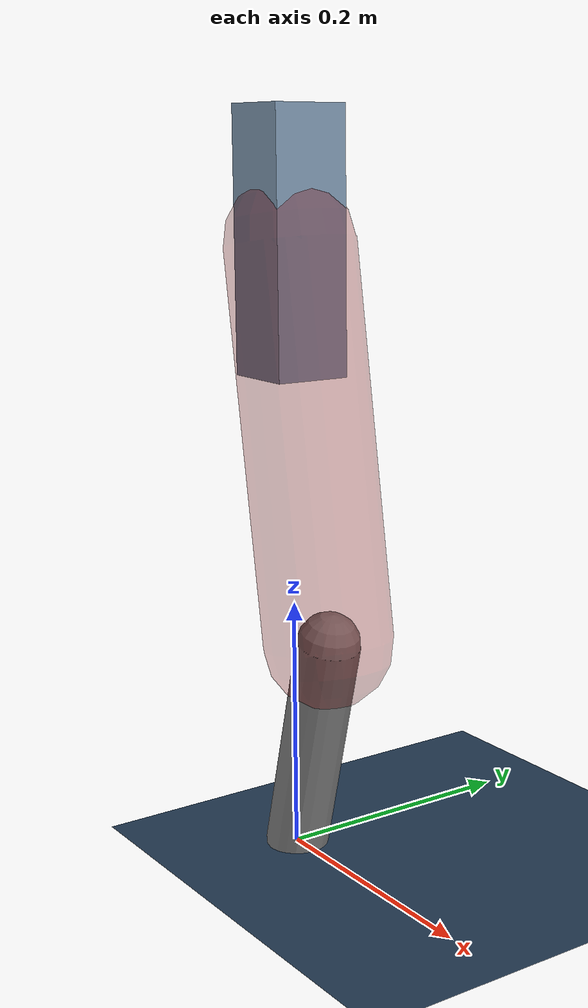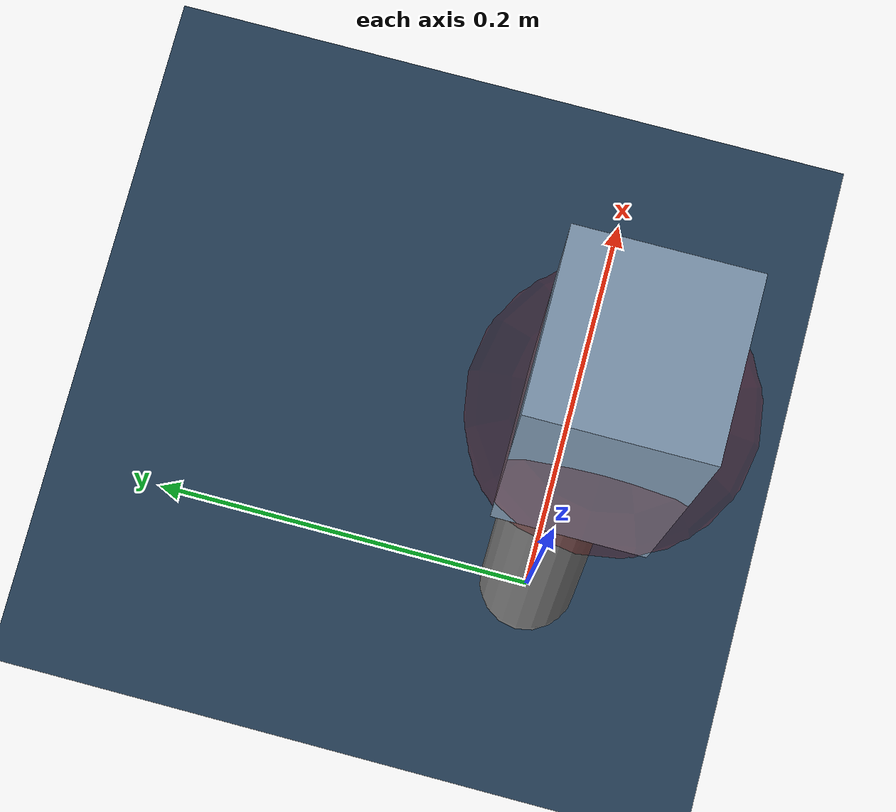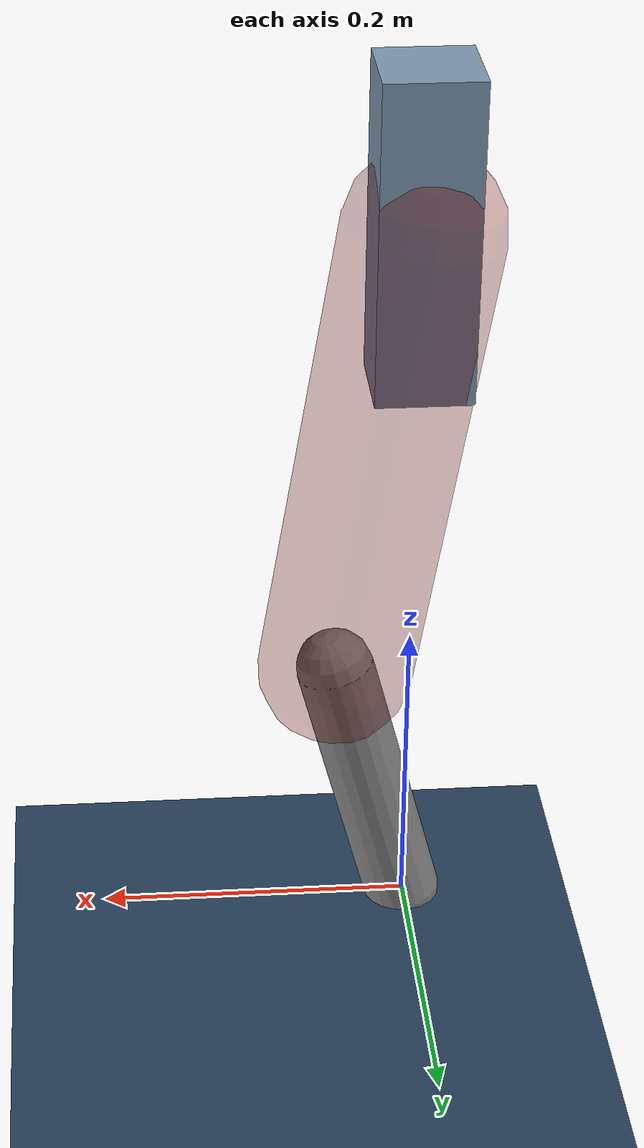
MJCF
<mujoco model="Hopper2D">
	<compiler inertiafromgeom="true" angle="radian" />
	<option timestep="0.001" integrator="implicit" cone="elliptic" solver="Newton" tolerance="1e-10" />

	<default>
		<geom contype="1" conaffinity="1" condim="3" friction="2 0.005 0.0001" solref="0.005 1" />
		<joint limited="true" damping="0.1" />
	</default>

	<asset>
		<texture name="skybox" type="skybox" builtin="gradient" rgb1=".4 .6 .8" rgb2="0 0 0" width="800" height="800" />
		<texture name="grid" type="2d" builtin="checker" rgb1=".1 .2 .3" rgb2=".2 .3 .4" width="300" height="300" mark="edge" markrgb=".2 .3 .4" />
		<material name="ground" texture="grid" texrepeat="1 1" texuniform="true" reflectance="0.1" />
		<material name="leg" rgba="0.5 0.6 0.7 1" />
	</asset>

	<worldbody>

		<geom name="floor" type="plane" size="5 5 0.25" material="ground" />

		<light directional="false" diffuse="0.8 0.8 0.8" specular="0.3 0.3 0.3" pos="0 0 2" dir="0 0 -1" />
		<light mode="targetbodycom" target="base" directional="false" diffuse="0.8 0.8 0.8" specular="0.3 0.3 0.3" pos="0 0 2" dir="0 0 -1" />

		<camera name="fixed" pos="0 -2 1" xyaxes="1 0 0 0 0 1" />
		<camera name="tracking" mode="trackcom" pos="0 -3 1" />

		<body name="root" pos="0 0 0.4790609681035703">
			<joint name="slide_x" type="slide" axis="1 0 0" range="-100 100" />
			<joint name="slide_z" type="slide" axis="0 0 1" range="0 10" />

			<body name="base" pos="0 0 0">
				<geom name="torso" type="box" size="0.03 0.03 0.1" mass="2.277" material="leg" />

				<body name="link1" pos="0 0 0" euler="0 1.413082191022116 0">
					<joint type="hinge" axis="0 -1 0" pos="0 0 0" name="hinge1" limited="true" range="-3.14 3.14" stiffness="0" damping="0.1" />
					<geom name="thigh" type="capsule" fromto="0 0 0 0.3035686937823555 0 0" size="0.05" rgba="0.5 0 0 0.3" mass="0.9984354732123599" />

					<body name="link2" pos="0.3035686937823555 0 0" euler="0 0.4176716511292977 0">
						<joint type="hinge" axis="0 -1 0" pos="0 0 0" name="hinge2" limited="true" range="-3.14 3.14" stiffness="0" damping="0.1" />
						<geom name="shank" type="capsule" fromto="0 0 0 0.1854922743212148 0 0" size="0.025" mass="0.38859381945697186" />

					</body>
				</body>
			</body>
		</body>
	</worldbody>

	<actuator>
		<motor name="torque1" joint="hinge1" ctrlrange="-59.916859215706125 59.916859215706125" ctrllimited="true" gear="1" />
		<motor name="torque2" joint="hinge2" ctrlrange="-92.9329799284676 92.9329799284676" ctrllimited="true" gear="1" />
	</actuator>
</mujoco>
